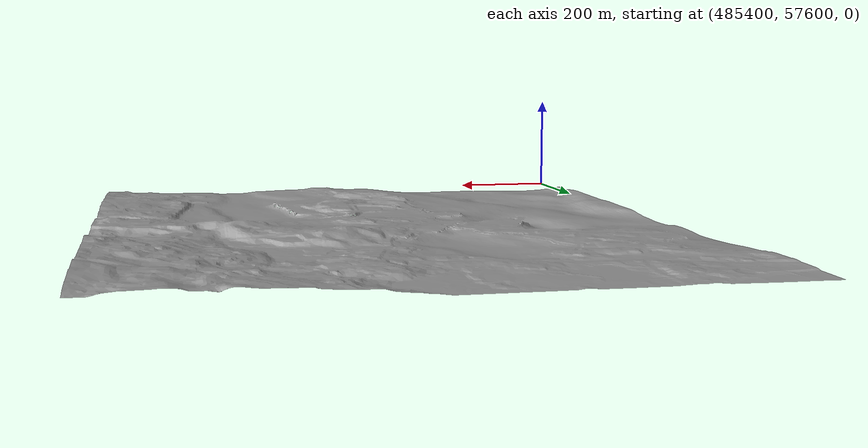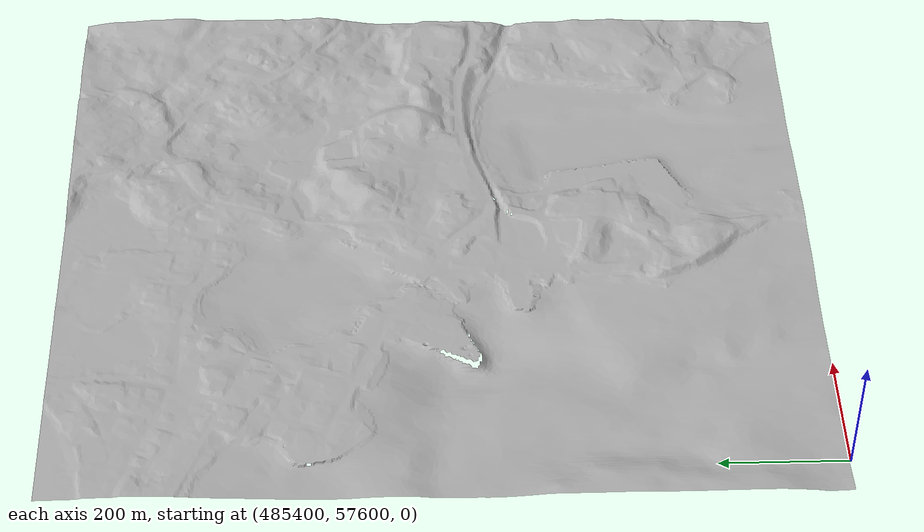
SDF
<?xml version="1.0" ?>
<sdf version="1.5">
  <model name="ncei19.R_-70.675_-70.663_41.519_41.529">
    <static>true</static>
    <pose>0 0 0 0 0 0</pose>
    <self_collide>false</self_collide>
    <link name="terrain_link">
      <visual name="terrain_visual">
	<geometry>
	  <mesh>
	    <uri>model://ncei19.R_-70.675_-70.663_41.519_41.529.epsg26987/meshes/ncei19.R_-70.675_-70.663_41.519_41.529.epsg26987.obj</uri>
	    <scale>1 1 1</scale>
	  </mesh>
	</geometry>

	<material>
	  <script>
	    <uri>file://Media/materials/scripts/sand.material</uri>
	    <name>WindSim/SandAndStones</name>
	  </script>
	</material>
      </visual>
      <collision name="collision">
	<geometry>
	  <mesh>
   	    <uri>model://ncei19.R_-70.675_-70.663_41.519_41.529.epsg26987/meshes/ncei19.R_-70.675_-70.663_41.519_41.529.epsg26987.obj</uri>
   	    <scale>1 1 1</scale>
	  </mesh>
	</geometry>
	<surface>
	  <contact>
            <collide_bitmask>0xffff</collide_bitmask>
	  </contact>
	</surface>
      </collision>
    </link>
  </model>
</sdf>
